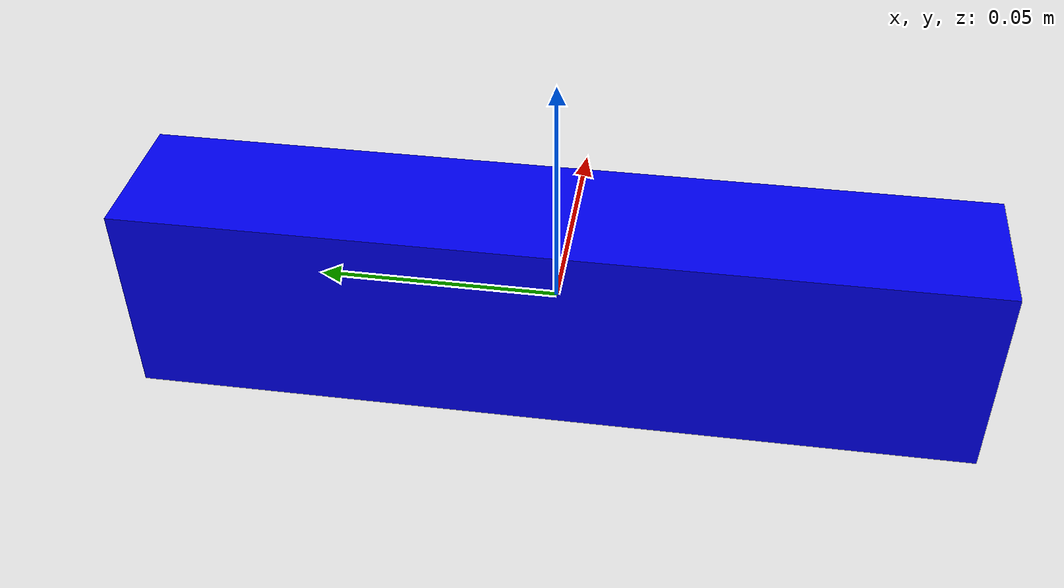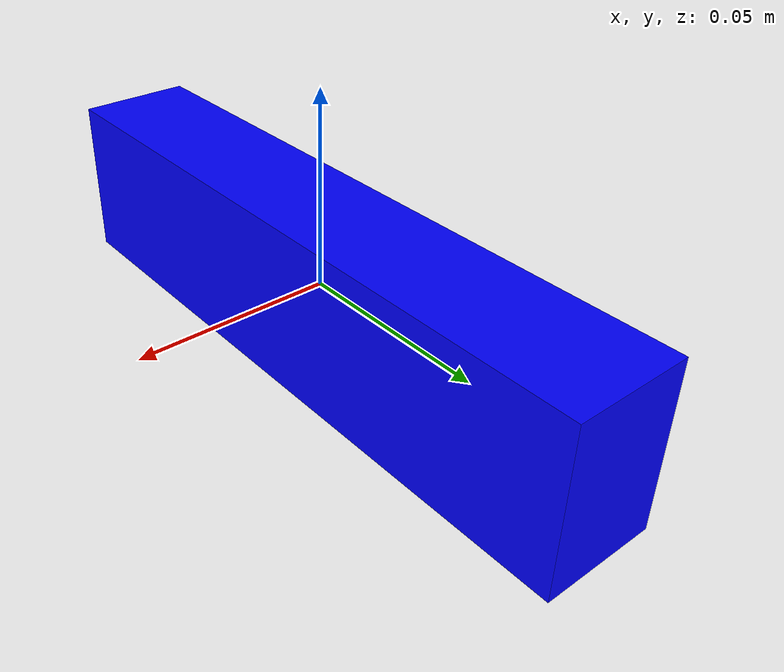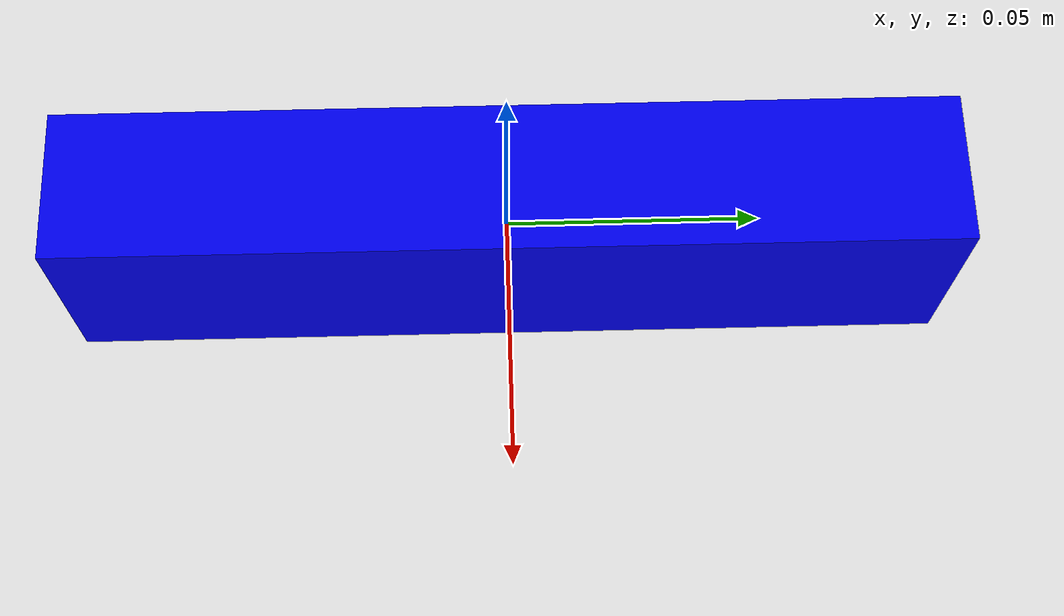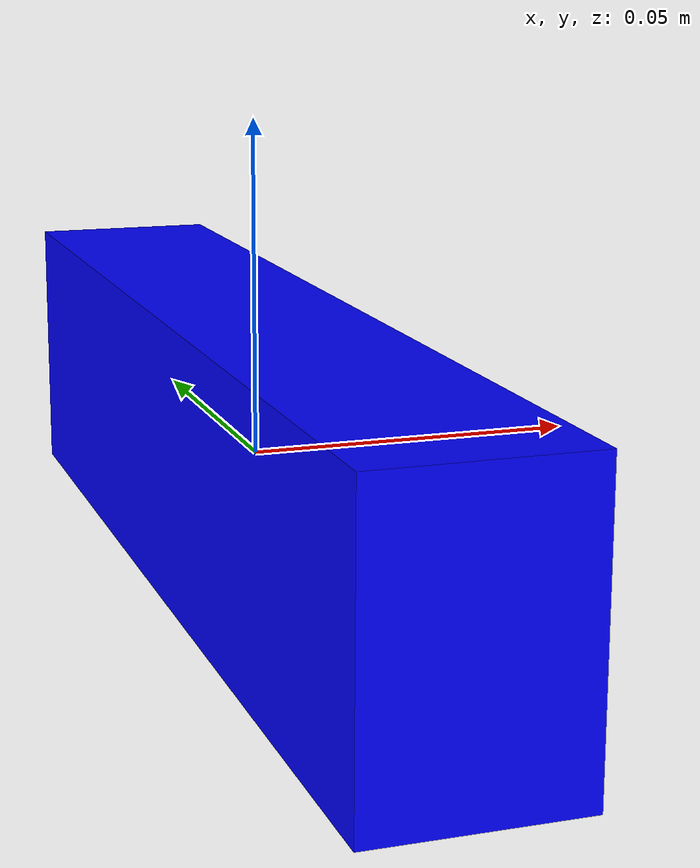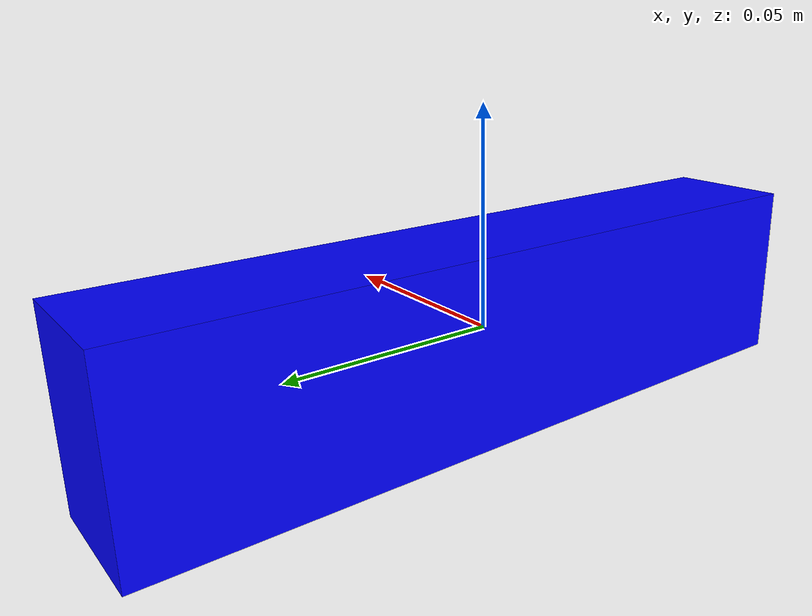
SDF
<?xml version="1.0"?>
<sdf version="1.6">
  <model name="camera">
    <link name="camera_link">
      <!-- Inerzia e massa -->
      <inertial>
        <pose>0 0 0 0 0 0</pose>
        <mass>0.01</mass>
        <inertia>
          <ixx>1e-6</ixx>
          <iyy>1e-6</iyy>
          <izz>1e-6</izz>
          <ixy>0.0</ixy>
          <ixz>0.0</ixz>
          <iyz>0.0</iyz>
        </inertia>
      </inertial>

      <!-- Visual -->
      <visual name="camera_visual">
        <pose>0 0 0 0 0 0</pose>
        <geometry>
          <box>
            <size>0.03 0.175 0.0431</size>
          </box>
        </geometry>
        <material>
          <ambient>0 0 1 1</ambient>
          <diffuse>0 0 1 1</diffuse>
        </material>
      </visual>

      <!-- Collision -->
      <collision name="camera_collision">
        <pose>0 0 0 0 0 0</pose>
        <geometry>
          <box>
            <size>0.03 0.175 0.0431</size>
          </box>
        </geometry>
      </collision>
    </link>

    <!-- Static -->
    <static>true</static>

    <!-- Gazebo camera sensor -->
    <link name="camera_link">
      <sensor name="gazebo_camera" type="camera">
        <pose>0 -0.06 -0.02 0 1.57079632679 0</pose>
        <camera>
          <horizontal_fov>1.9199</horizontal_fov>
          <image>
            <width>640</width>
            <height>480</height>
            <format>R8G8B8</format>
          </image>
          <clip>
            <near>0.3</near>
            <far>20.0</far>
          </clip>
        </camera>
        <always_on>true</always_on>
        <update_rate>30</update_rate>
        <visualize>true</visualize>
        <plugin name="camera_controller" filename="libgazebo_ros_camera.so">
          <ros>
            <namespace>/my_camera</namespace>
            <image_topic_name>image_raw</image_topic_name>
            <camera_info_topic_name>camera_info</camera_info_topic_name>
          </ros>
        </plugin>
      </sensor>
    </link>
  </model>
</sdf>
